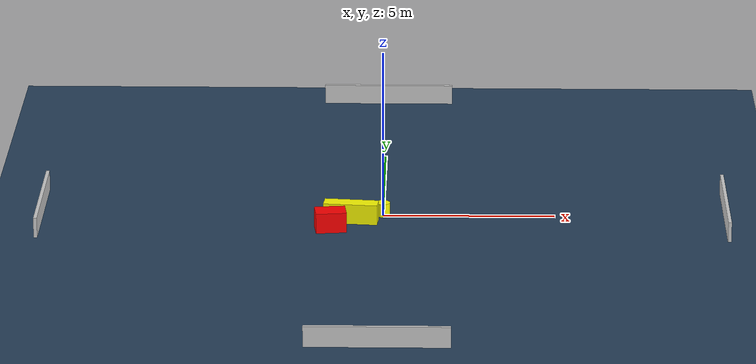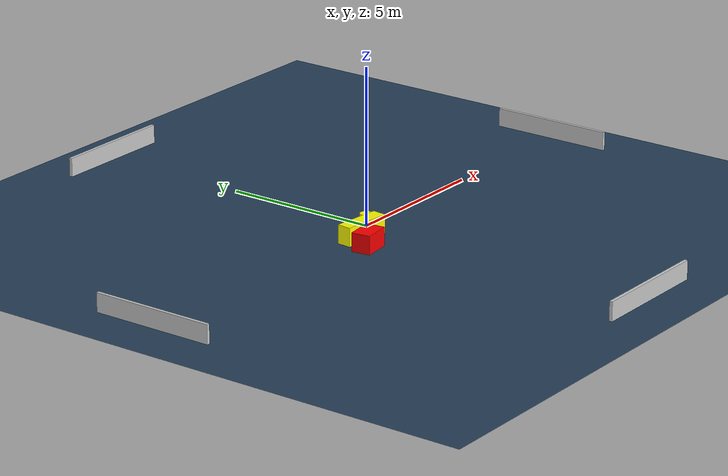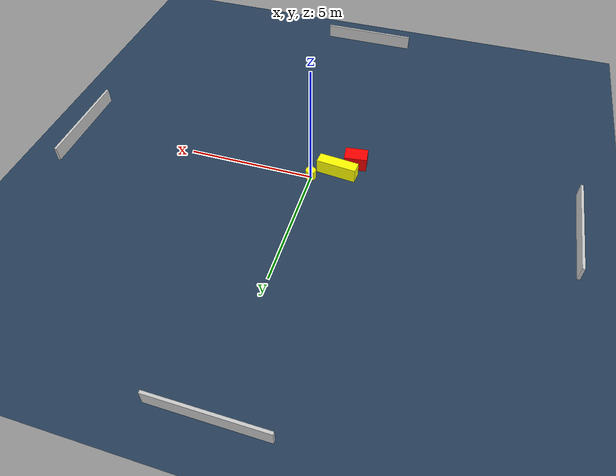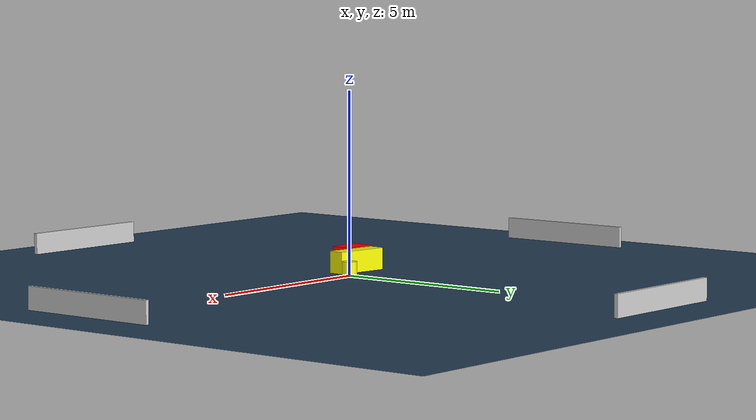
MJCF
<?xml version="1.0" ?>
<mujoco model="generated_environment">
  <option timestep="0.01" integrator="RK4" cone="elliptic"/>
  <default>
    <geom density="1"/>
  </default>
  <asset>
    <texture builtin="gradient" height="3072" name="skybox" rgb1="0.3 0.5 0.7" rgb2="0 0 0" type="skybox" width="512"/>
    <texture builtin="checker" height="300" name="groundplane" rgb1="0.2 0.3 0.4" rgb2="0.1 0.2 0.3" type="2d" width="300"/>
    <material name="groundplane" reflectance="0.2" texrepeat="5 5" texture="groundplane"/>
  </asset>
  <worldbody>
    <light dir="0 0 -1" directional="true" pos="0 0 1.5"/>
    <geom condim="3" friction="0.5 0.005 0.001" material="groundplane" name="floor" pos="0 0 0" size="0 0 0.05" type="plane"/>
    <body name="walls">
      <geom name="wall_1" condim="4" pos="-10.0 0.0 0.3" rgba="0.800000011920929 0.800000011920929 0.800000011920929 1.0" size="0.05 2.0 0.3" type="box"/>
      <geom name="wall_2" condim="4" pos="10.0 0.0 0.3" rgba="0.800000011920929 0.800000011920929 0.800000011920929 1.0" size="0.05 2.0 0.3" type="box"/>
      <geom name="wall_3" condim="4" pos="0.0 -10.0 0.3" rgba="0.800000011920929 0.800000011920929 0.800000011920929 1.0" size="2.0 0.05 0.3" type="box"/>
      <geom name="wall_4" condim="4" pos="0.0 10.0 0.3" rgba="0.800000011920929 0.800000011920929 0.800000011920929 1.0" size="2.0 0.05 0.3" type="box"/>
    </body>
    <body name="robot">
      <joint name="joint_x" type="slide" pos="0 0 0" axis="1 0 0"/>
      <joint name="joint_y" type="slide" pos="0 0 0" axis="0 1 0"/>
      <geom name="robot" type="cylinder" pos="0.0 0.0 0.2" size="0.2 0.2 0.0" mass="5.0" friction="1.0 0.005 0.0001" condim="4" rgba="1.0 1.0 0.0 1.0"/>
    </body>
    <body name="obstacle_1_movable">
      <geom name="obstacle_1_movable" condim="4" pos="-0.9306776579934536 -0.5203833043488758 0.3" euler="0 0 174.3430062664663" friction="0.0 0.005 0.001" rgba="1.0 1.0 0.0 1.0" size="0.7863748168639035 0.22260184104068223 0.3" type="box" mass="0.1"/>
      <joint type="free"/>
    </body>
    <body name="obstacle_2_static">
      <geom name="obstacle_2_static" condim="4" pos="-1.5103087117275906 -1.1846484439440208 0.3" euler="0 0 6.686346244016974" friction="0.0 0.005 0.001" rgba="1.0 0.0 0.0 1.0" size="0.4470902522683968 0.30382121207466395 0.3" type="box"/>
    </body>
  </worldbody>
  <actuator>
    <motor name="actuator_x" joint="joint_x" gear="1" ctrlrange="-1 1"/>
    <motor name="actuator_y" joint="joint_y" gear="1" ctrlrange="-1 1"/>
  </actuator>
</mujoco>
